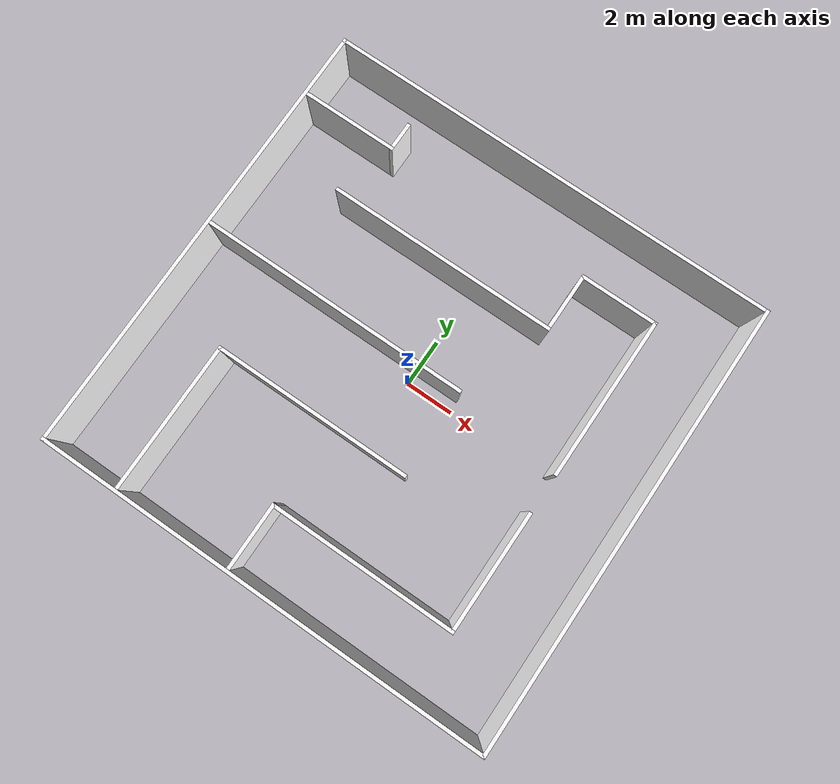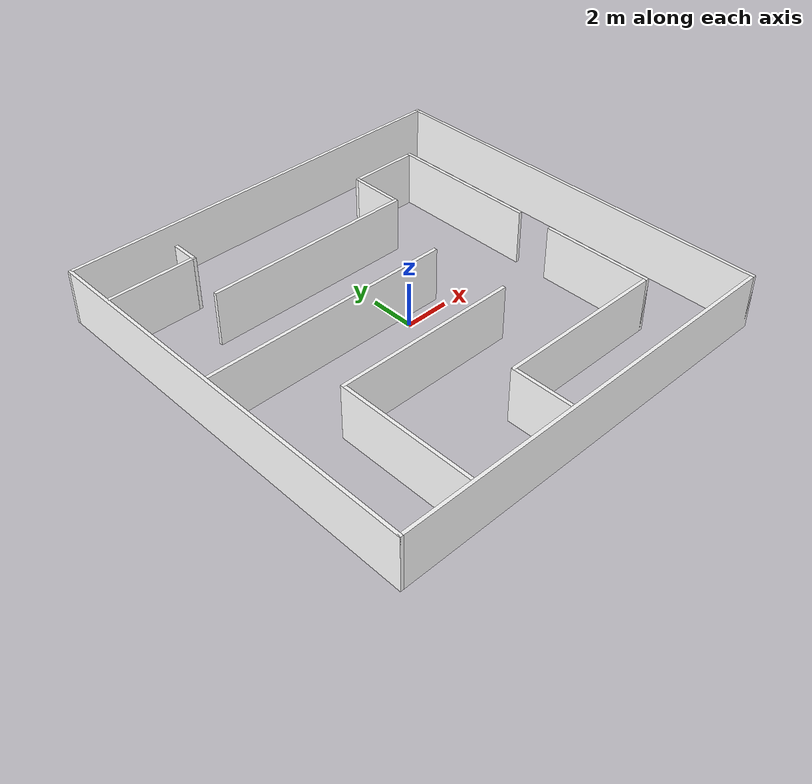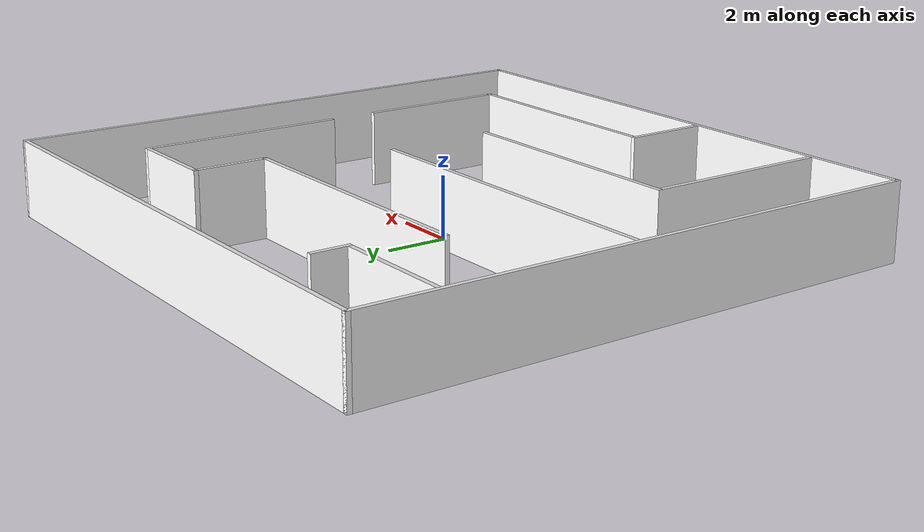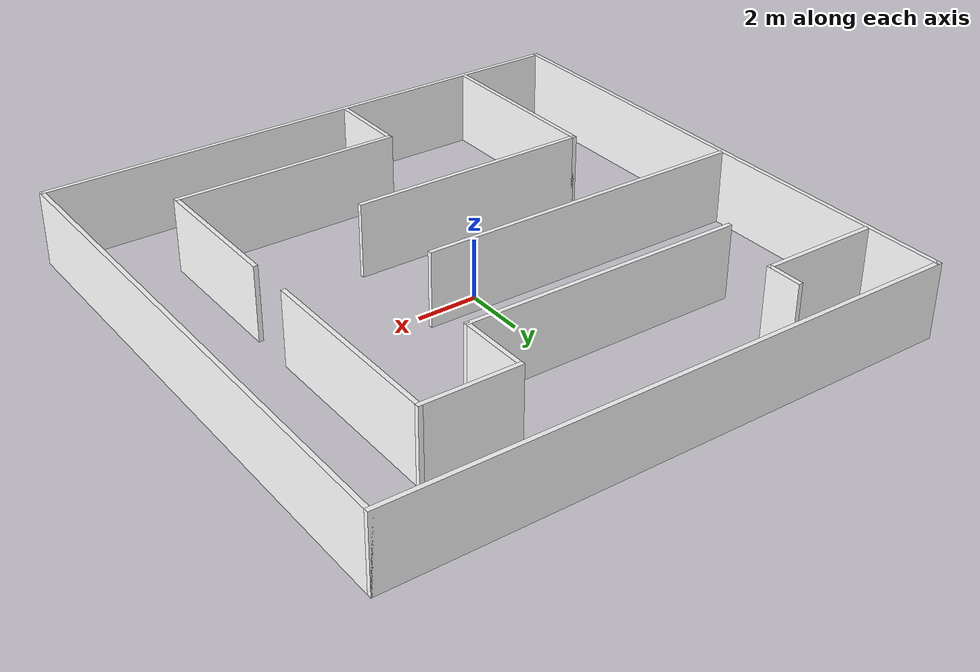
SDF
<?xml version='1.0'?>
<sdf version='1.6'>
  <model name='Office_Walls'>
    <pose frame=''>0.077521 0.004492 0 0 -0 0</pose>
    <link name='Wall_0'>
      <collision name='Wall_0_Collision'>
        <geometry>
          <box>
            <size>19 0.15 2.5</size>
          </box>
        </geometry>
        <pose frame=''>0 0 1.25 0 -0 0</pose>
      </collision>
      <visual name='Wall_0_Visual'>
        <pose frame=''>0 0 1.25 0 -0 0</pose>
        <geometry>
          <box>
            <size>19 0.15 2.5</size>
          </box>
        </geometry>
        <material>
          <script>
            <uri>model://Office_Walls/materials/scripts</uri>
            <uri>model://Office_Walls/materials/textures</uri>
            <name>outside_wallMat/Diffuse</name>
          </script>
          <ambient>1 1 1 1</ambient>
        </material>
        <meta>
          <layer>0</layer>
        </meta>
      </visual>
      <pose frame=''>0 9.3 0 0 -0 0</pose>
    </link>
    <link name='Wall_10'>
      <collision name='Wall_10_Collision'>
        <geometry>
          <box>
            <size>8.25 0.15 2.5</size>
          </box>
        </geometry>
        <pose frame=''>0 0 1.25 0 -0 0</pose>
      </collision>
      <visual name='Wall_10_Visual'>
        <pose frame=''>0 0 1.25 0 -0 0</pose>
        <geometry>
          <box>
            <size>8.25 0.15 2.5</size>
          </box>
        </geometry>
        <material>
          <script>
            <uri>model://Office_Walls/materials/scripts</uri>
            <uri>model://Office_Walls/materials/textures</uri>
            <name>wallMat/Diffuse</name>
          </script>
          <ambient>1 1 1 1</ambient>
        </material>
        <meta>
          <layer>0</layer>
        </meta>
      </visual>
      <pose frame=''>-2.15179 -3.08037 0 0 -0 0</pose>
    </link>
    <link name='Wall_12'>
      <collision name='Wall_12_Collision'>
        <geometry>
          <box>
            <size>2.75 0.15 2.5</size>
          </box>
        </geometry>
        <pose frame=''>0 0 1.25 0 -0 0</pose>
      </collision>
      <visual name='Wall_12_Visual'>
        <pose frame=''>0 0 1.25 0 -0 0</pose>
        <geometry>
          <box>
            <size>2.75 0.15 2.5</size>
          </box>
        </geometry>
        <material>
          <script>
            <uri>model://Office_Walls/materials/scripts</uri>
            <uri>model://Office_Walls/materials/textures</uri>
            <name>wallMat/Diffuse</name>
          </script>
          <ambient>1 1 1 1</ambient>
        </material>
        <meta>
          <layer>0</layer>
        </meta>
      </visual>
      <pose frame=''>-1.31194 -7.84519 0 0 -0 1.5708</pose>
    </link>
    <link name='Wall_13'>
      <collision name='Wall_13_Collision'>
        <geometry>
          <box>
            <size>7.75 0.15 2.5</size>
          </box>
        </geometry>
        <pose frame=''>0 0 1.25 0 -0 0</pose>
      </collision>
      <visual name='Wall_13_Visual'>
        <pose frame=''>0 0 1.25 0 -0 0</pose>
        <geometry>
          <box>
            <size>7.75 0.15 2.5</size>
          </box>
        </geometry>
        <material>
          <script>
            <uri>model://Office_Walls/materials/scripts</uri>
            <uri>model://Office_Walls/materials/textures</uri>
            <name>wallMat/Diffuse</name>
          </script>
          <ambient>1 1 1 1</ambient>
        </material>
        <meta>
          <layer>0</layer>
        </meta>
      </visual>
      <pose frame=''>2.48806 -6.54519 0 0 -0 0</pose>
    </link>
    <link name='Wall_14'>
      <collision name='Wall_14_Collision'>
        <geometry>
          <box>
            <size>5 0.15 2.5</size>
          </box>
        </geometry>
        <pose frame=''>0 0 1.25 0 -0 0</pose>
      </collision>
      <visual name='Wall_14_Visual'>
        <pose frame=''>0 0 1.25 0 -0 0</pose>
        <geometry>
          <box>
            <size>5 0.15 2.5</size>
          </box>
        </geometry>
        <material>
          <script>
            <uri>model://Office_Walls/materials/scripts</uri>
            <uri>model://Office_Walls/materials/textures</uri>
            <name>wallMat/Diffuse</name>
          </script>
          <ambient>1 1 1 1</ambient>
        </material>
        <meta>
          <layer>0</layer>
        </meta>
      </visual>
      <pose frame=''>6.28806 -4.12019 0 0 -0 1.5708</pose>
    </link>
    <link name='Wall_16'>
      <collision name='Wall_16_Collision'>
        <geometry>
          <box>
            <size>6.75 0.15 2.5</size>
          </box>
        </geometry>
        <pose frame=''>0 0 1.25 0 -0 0</pose>
      </collision>
      <visual name='Wall_16_Visual'>
        <pose frame=''>0 0 1.25 0 -0 0</pose>
        <geometry>
          <box>
            <size>6.75 0.15 2.5</size>
          </box>
        </geometry>
        <material>
          <script>
            <uri>model://Office_Walls/materials/scripts</uri>
            <uri>model://Office_Walls/materials/textures</uri>
            <name>wallMat/Diffuse</name>
          </script>
          <ambient>1 1 1 1</ambient>
        </material>
        <meta>
          <layer>0</layer>
        </meta>
      </visual>
      <pose frame=''>6.28667 3.30129 0 0 -0 1.5708</pose>
    </link>
    <link name='Wall_17'>
      <collision name='Wall_17_Collision'>
        <geometry>
          <box>
            <size>3.25 0.15 2.5</size>
          </box>
        </geometry>
        <pose frame=''>0 0 1.25 0 -0 0</pose>
      </collision>
      <visual name='Wall_17_Visual'>
        <pose frame=''>0 0 1.25 0 -0 0</pose>
        <geometry>
          <box>
            <size>3.25 0.15 2.5</size>
          </box>
        </geometry>
        <material>
          <script>
            <uri>model://Office_Walls/materials/scripts</uri>
            <uri>model://Office_Walls/materials/textures</uri>
            <name>wallMat/Diffuse</name>
          </script>
          <ambient>1 1 1 1</ambient>
        </material>
        <meta>
          <layer>0</layer>
        </meta>
      </visual>
      <pose frame=''>4.73667 6.60129 0 0 -0 3.14159</pose>
    </link>
    <link name='Wall_18'>
      <collision name='Wall_18_Collision'>
        <geometry>
          <box>
            <size>2.5 0.15 2.5</size>
          </box>
        </geometry>
        <pose frame=''>0 0 1.25 0 -0 0</pose>
      </collision>
      <visual name='Wall_18_Visual'>
        <pose frame=''>0 0 1.25 0 -0 0</pose>
        <geometry>
          <box>
            <size>2.5 0.15 2.5</size>
          </box>
        </geometry>
        <material>
          <script>
            <uri>model://Office_Walls/materials/scripts</uri>
            <uri>model://Office_Walls/materials/textures</uri>
            <name>wallMat/Diffuse</name>
          </script>
          <ambient>1 1 1 1</ambient>
        </material>
        <meta>
          <layer>0</layer>
        </meta>
      </visual>
      <pose frame=''>3.18667 5.42629 0 0 -0 -1.5708</pose>
    </link>
    <link name='Wall_19'>
      <collision name='Wall_19_Collision'>
        <geometry>
          <box>
            <size>9.5 0.15 2.5</size>
          </box>
        </geometry>
        <pose frame=''>0 0 1.25 0 -0 0</pose>
      </collision>
      <visual name='Wall_19_Visual'>
        <pose frame=''>0 0 1.25 0 -0 0</pose>
        <geometry>
          <box>
            <size>9.5 0.15 2.5</size>
          </box>
        </geometry>
        <material>
          <script>
            <uri>model://Office_Walls/materials/scripts</uri>
            <uri>model://Office_Walls/materials/textures</uri>
            <name>wallMat/Diffuse</name>
          </script>
          <ambient>1 1 1 1</ambient>
        </material>
        <meta>
          <layer>0</layer>
        </meta>
      </visual>
      <pose frame=''>-1.48833 4.25129 0 0 -0 3.14159</pose>
    </link>
    <link name='Wall_21'>
      <collision name='Wall_21_Collision'>
        <geometry>
          <box>
            <size>11.25 0.15 2.5</size>
          </box>
        </geometry>
        <pose frame=''>0 0 1.25 0 -0 0</pose>
      </collision>
      <visual name='Wall_21_Visual'>
        <pose frame=''>0 0 1.25 0 -0 0</pose>
        <geometry>
          <box>
            <size>11.25 0.15 2.5</size>
          </box>
        </geometry>
        <material>
          <script>
            <uri>model://Office_Walls/materials/scripts</uri>
            <uri>model://Office_Walls/materials/textures</uri>
            <name>wallMat/Diffuse</name>
          </script>
          <ambient>1 1 1 1</ambient>
        </material>
        <meta>
          <layer>0</layer>
        </meta>
      </visual>
      <pose frame=''>-3.74752 0.528973 0 0 -0 0</pose>
    </link>
    <link name='Wall_23'>
      <collision name='Wall_23_Collision'>
        <geometry>
          <box>
            <size>4 0.15 2.5</size>
          </box>
        </geometry>
        <pose frame=''>0 0 1.25 0 -0 0</pose>
      </collision>
      <visual name='Wall_23_Visual'>
        <pose frame=''>0 0 1.25 0 -0 0</pose>
        <geometry>
          <box>
            <size>4 0.15 2.5</size>
          </box>
        </geometry>
        <material>
          <script>
            <uri>model://Office_Walls/materials/scripts</uri>
            <uri>model://Office_Walls/materials/textures</uri>
            <name>wallMat/Diffuse</name>
          </script>
          <ambient>1 1 1 1</ambient>
        </material>
        <meta>
          <layer>0</layer>
        </meta>
      </visual>
      <pose frame=''>-7.37252 6.72044 0 0 -0 0</pose>
    </link>
    <link name='Wall_24'>
      <collision name='Wall_24_Collision'>
        <geometry>
          <box>
            <size>1.25 0.15 2.5</size>
          </box>
        </geometry>
        <pose frame=''>0 0 1.25 0 -0 0</pose>
      </collision>
      <visual name='Wall_24_Visual'>
        <pose frame=''>0 0 1.25 0 -0 0</pose>
        <geometry>
          <box>
            <size>1.25 0.15 2.5</size>
          </box>
        </geometry>
        <material>
          <script>
            <uri>model://Office_Walls/materials/scripts</uri>
            <uri>model://Office_Walls/materials/textures</uri>
            <name>wallMat/Diffuse</name>
          </script>
          <ambient>1 1 1 1</ambient>
        </material>
        <meta>
          <layer>0</layer>
        </meta>
      </visual>
      <pose frame=''>-5.44752 7.27043 0 0 -0 1.5708</pose>
    </link>
    <link name='Wall_3'>
      <collision name='Wall_3_Collision'>
        <geometry>
          <box>
            <size>18.75 0.15 2.5</size>
          </box>
        </geometry>
        <pose frame=''>0 0 1.25 0 -0 0</pose>
      </collision>
      <visual name='Wall_3_Visual'>
        <pose frame=''>0 0 1.25 0 -0 0</pose>
        <geometry>
          <box>
            <size>18.75 0.15 2.5</size>
          </box>
        </geometry>
        <material>
          <script>
            <uri>model://Office_Walls/materials/scripts</uri>
            <uri>model://Office_Walls/materials/textures</uri>
            <name>outside_wallMat/Diffuse</name>
          </script>
          <ambient>1 1 1 1</ambient>
        </material>
        <meta>
          <layer>0</layer>
        </meta>
      </visual>
      <pose frame=''>-9.425 -0 0 0 -0 -1.5708</pose>
    </link>
    <link name='Wall_4'>
      <collision name='Wall_4_Collision'>
        <geometry>
          <box>
            <size>19 0.15 2.5</size>
          </box>
        </geometry>
        <pose frame=''>0 0 1.25 0 -0 0</pose>
      </collision>
      <visual name='Wall_4_Visual'>
        <pose frame=''>0 0 1.25 0 -0 0</pose>
        <geometry>
          <box>
            <size>19 0.15 2.5</size>
          </box>
        </geometry>
        <material>
          <script>
            <uri>model://Office_Walls/materials/scripts</uri>
            <uri>model://Office_Walls/materials/textures</uri>
            <name>outside_wallMat/Diffuse</name>
          </script>
          <ambient>1 1 1 1</ambient>
        </material>
        <meta>
          <layer>0</layer>
        </meta>
      </visual>
      <pose frame=''>0 -9.3 0 0 -0 0</pose>
    </link>
    <link name='Wall_5'>
      <collision name='Wall_5_Collision'>
        <geometry>
          <box>
            <size>18.75 0.15 2.5</size>
          </box>
        </geometry>
        <pose frame=''>0 0 1.25 0 -0 0</pose>
      </collision>
      <visual name='Wall_5_Visual'>
        <pose frame=''>0 0 1.25 0 -0 0</pose>
        <geometry>
          <box>
            <size>18.75 0.15 2.5</size>
          </box>
        </geometry>
        <material>
          <script>
            <uri>model://Office_Walls/materials/scripts</uri>
            <uri>model://Office_Walls/materials/textures</uri>
            <name>outside_wallMat/Diffuse</name>
          </script>
          <ambient>1 1 1 1</ambient>
        </material>
        <meta>
          <layer>0</layer>
        </meta>
      </visual>
      <pose frame=''>9.425 -0 0 0 -0 1.5708</pose>
    </link>
    <link name='Wall_9'>
      <collision name='Wall_9_Collision'>
        <geometry>
          <box>
            <size>6.25 0.15 2.5</size>
          </box>
        </geometry>
        <pose frame=''>0 0 1.25 0 -0 0</pose>
      </collision>
      <visual name='Wall_9_Visual'>
        <pose frame=''>0 0 1.25 0 -0 0</pose>
        <geometry>
          <box>
            <size>6.25 0.15 2.5</size>
          </box>
        </geometry>
        <material>
          <script>
            <uri>model://Office_Walls/materials/scripts</uri>
            <uri>model://Office_Walls/materials/textures</uri>
            <name>wallMat/Diffuse</name>
          </script>
          <ambient>1 1 1 1</ambient>
        </material>
        <meta>
          <layer>0</layer>
        </meta>
      </visual>
      <pose frame=''>-6.20179 -6.13037 0 0 -0 1.5708</pose>
    </link>
    <static>1</static>
  </model>
</sdf>
